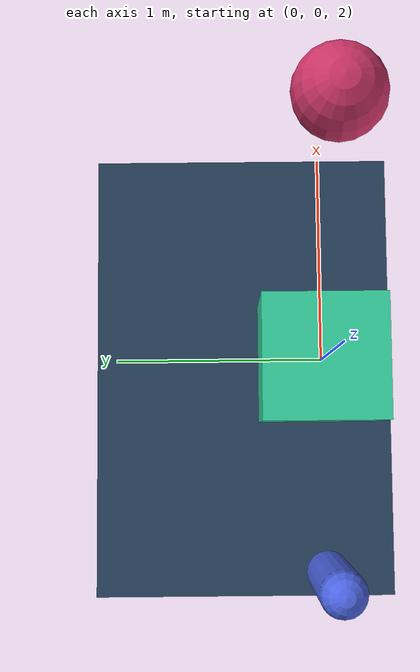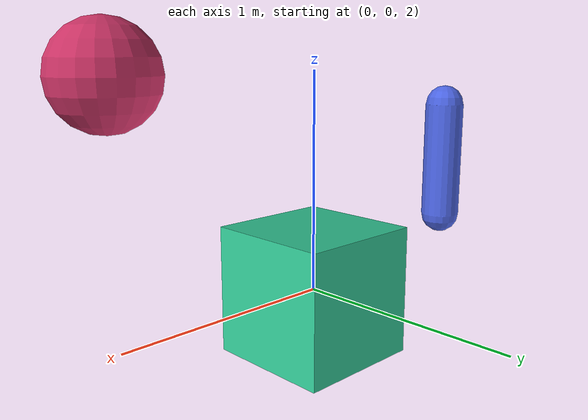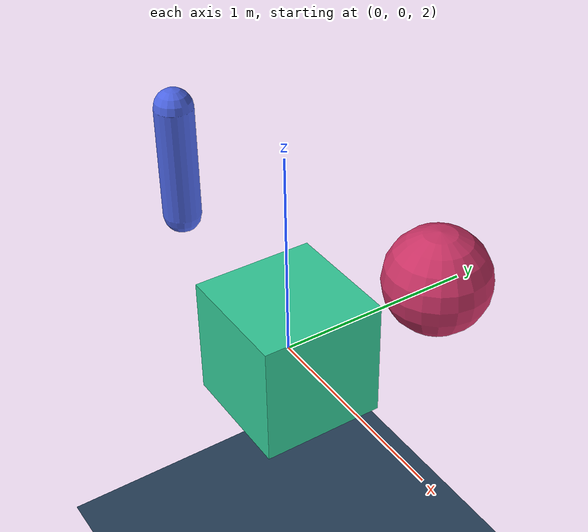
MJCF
<mujoco model="floating_box">
  <option timestep="0.005" gravity="0 0 -9.81"/>

  <visual>
    <headlight ambient="0.4 0.4 0.4" diffuse="0.6 0.6 0.6" specular="0.1 0.1 0.1"/>
    <rgba haze="0.15 0.25 0.35 1"/>
  </visual>

  <worldbody>
    <light pos="0 0 5" dir="0 0 -1" directional="true"/>
    <geom name="floor" type="plane" size="5 5 0.05" material="grid"/>

    <body name="box" pos="0 0 2">
      <freejoint name="free"/>
      <geom name="box_geom" type="box" size="0.3 0.3 0.3"
            rgba="0.2 0.8 0.6 1" mass="2"/>
    </body>

    <body name="sphere" pos="1 0 3">
      <freejoint name="free2"/>
      <geom name="sphere_geom" type="sphere" size="0.2"
            rgba="0.8 0.2 0.4 1" mass="1"/>
    </body>

    <body name="capsule" pos="-1 0 2.5">
      <freejoint name="free3"/>
      <geom name="capsule_geom" type="capsule" size="0.1 0.3"
            rgba="0.3 0.4 0.9 1" mass="1.5"/>
    </body>
  </worldbody>

  <asset>
    <texture type="skybox" builtin="gradient" rgb1="0.1 0.1 0.2"
             rgb2="0 0 0" width="512" height="512"/>
    <texture name="grid" type="2d" builtin="checker" rgb1=".1 .2 .3"
             rgb2=".2 .3 .4" width="512" height="512" mark="edge"
             markrgb=".8 .8 .8"/>
    <material name="grid" texture="grid" texrepeat="1 1"
              texuniform="true" reflectance=".2"/>
  </asset>
</mujoco>
